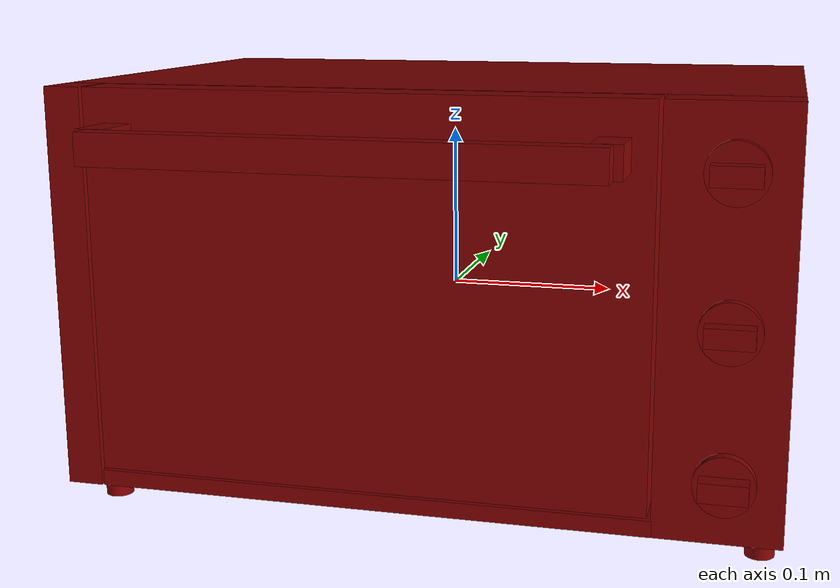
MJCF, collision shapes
<?xml version='1.0' encoding='UTF-8'?>
<mujoco model="model">
  <option timestep="0.002" gravity="0.0 0.0 -9.81"/>
  <compiler angle="radian"/>
  <asset>
    <mesh file="visuals/door.obj" name="door_vis"/>
    <mesh file="visuals/knob_function.obj" name="knob_function_vis"/>
    <mesh file="visuals/knob_temp.obj" name="knob_temp_vis"/>
    <mesh file="visuals/knob_time.obj" name="knob_time_vis"/>
    <mesh file="visuals/rack0.obj" name="rack0_vis"/>
    <mesh file="visuals/Body001.obj" name="Body001_vis"/>
    <mesh file="visuals/window.obj" name="window_vis"/>
    <texture file="visuals/T_BC001.png" name="Body001_material" type="2d"/>
    <material name="Body001_material" rgba="1 1 1 1.0" texture="Body001_material" shininess="0.1" specular="4"/>
    <texture file="visuals/T_BC001.png" name="door_material" type="2d"/>
    <material name="door_material" rgba="1 1 1 1.0" texture="door_material" shininess="0.1" specular="4"/>
    <material name="window_material" rgba="0.031017683446407318 0.031017683446407318 0.031017683446407318 0.800000011920929" shininess="0.4472135901451111" specular="0.3103448502657381"/>
    <texture file="visuals/T_BC001.png" name="knob_function_material" type="2d"/>
    <material name="knob_function_material" rgba="1 1 1 1.0" texture="knob_function_material" shininess="0.1" specular="4"/>
    <texture file="visuals/T_BC001.png" name="knob_temp_material" type="2d"/>
    <material name="knob_temp_material" rgba="1 1 1 1.0" texture="knob_temp_material" shininess="0.1" specular="4"/>
    <texture file="visuals/T_BC001.png" name="knob_time_material" type="2d"/>
    <material name="knob_time_material" rgba="1 1 1 1.0" texture="knob_time_material" shininess="0.1" specular="4"/>
    <texture file="visuals/T_BC001.png" name="rack0_material" type="2d"/>
    <material name="rack0_material" rgba="1 1 1 1.0" texture="rack0_material" shininess="0.1" specular="4"/>
  </asset>
  <default>
    <default class="visual">
      <geom conaffinity="0" contype="0" group="1" type="mesh"/>
    </default>
    <default class="collision">
      <geom group="0" rgba="0.5 0 0 0.5"/>
    </default>
    <default class="spawn">
      <geom group="0" rgba="1 1 1 0.5" contype="0" conaffinity="0"/>
      <site group="0" rgba="1 1 1 0.5"/>
    </default>
    <default class="region">
      <geom group="1" conaffinity="0" contype="0" rgba="0 1 0 0"/>
    </default>
  </default>
  <worldbody>
    <body>
      <body name="object">
        <geom mesh="Body001_vis" type="mesh" solimp="0.998 0.998 0.001" solref="0.001 1" friction="0.95 0.3 0.1" class="visual" material="Body001_material"/>
        <geom class="collision" type="box" pos="-1.1117663234472275e-08 0.038213882595300674 0.11146704107522964" size="0.21495407819747925 0.13431453704833984 0.020544366911053658" quat="1.0 0.0 0.0 0.0"/>
        <geom class="collision" type="box" pos="-1.1117663234472275e-08 0.038213882595300674 -0.10014694184064865" size="0.2149542272090912 0.1343146115541458 0.011536444537341595" quat="1.0 0.0 0.0 0.0"/>
        <geom class="collision" type="box" pos="-0.19572514295578003 0.038213882595300674 0.0013687210157513618" size="0.01923057809472084 0.13431468605995178 0.09001287817955017" quat="1.0 0.0 0.0 0.0"/>
        <geom class="collision" type="box" pos="0.17079590260982513 0.038213882595300674 0.0013687210157513618" size="0.044159721583127975 0.13431477546691895 0.09001291543245316" quat="1.0 0.0 0.0 0.0"/>
        <geom class="collision" type="box" pos="-0.023536691442131996 0.1631796658039093 0.0009072599932551384" size="0.15547867119312286 0.009349587373435497 0.08971089869737625" quat="1.0 0.0 0.0 0.0"/>
        <geom class="collision" type="box" pos="0.17874960601329803 -0.11105093359947205 0.010515553876757622" size="0.036206070333719254 0.014795082621276379 0.12149550020694733" quat="1.0 0.0 0.0 0.0"/>
        <geom class="collision" type="box" pos="-0.20392177999019623 -0.11129484325647354 0.010515553876757622" size="0.011033985763788223 0.015039000660181046 0.1214955747127533" quat="1.0 0.0 0.0 0.0"/>
        <geom class="collision" type="box" pos="-0.024312153458595276 -0.11116747558116913 -0.1061135083436966" size="0.1673894077539444 0.014911646023392677 0.004866898991167545" quat="1.0 0.0 0.0 0.0"/>
        <geom class="collision" type="cylinder" pos="-0.20294469594955444 -0.08630774915218353 -0.12149842083454132" size="0.008559237234294415 0.010513102635741234" quat="1.0 0.0 0.0 0.0"/>
        <geom class="collision" type="cylinder" pos="-0.20294469594955444 0.15876813232898712 -0.12149842083454132" size="0.008559237234294415 0.010513102635741234" quat="1.0 0.0 0.0 0.0"/>
        <geom class="collision" type="cylinder" pos="0.20214441418647766 0.15876813232898712 -0.12149842083454132" size="0.008559237234294415 0.010513102635741234" quat="1.0 0.0 0.0 0.0"/>
        <geom class="collision" type="cylinder" pos="0.20214441418647766 -0.08630774915218353 -0.12149842083454132" size="0.008559237234294415 0.010513102635741234" quat="1.0 0.0 0.0 0.0"/>
        <body name="door">
          <joint axis="1.0 0.0 0.0" pos="-0.025415249168872833 -0.12591320276260376 -0.09845322370529175" limited="true" name="door_joint" range="0.0 1.3707963267948966" type="hinge" damping="1" frictionloss="1" armature=".01" stiffness="0.05"/>
          <geom mesh="door_vis" type="mesh" solimp="0.998 0.998 0.001" solref="0.001 1" friction="0.95 0.3 0.1" class="visual" material="door_material"/>
          <geom class="collision" type="box" pos="-0.025143245235085487 -0.11256273090839386 0.016207324340939522" size="0.1654980629682541 0.013771158643066883 0.11580420285463333" quat="1.0 0.0 0.0 0.0" name="door_main"/>
          <geom class="collision" type="box" pos="-0.024750102311372757 -0.16606825590133667 0.10223766416311264" size="0.14608556032180786 0.007121006026864052 0.00943788979202509" quat="1.0 0.0 0.0 0.0" name="door_handle_main"/>
          <geom class="collision" type="box" pos="-0.16922050714492798 -0.1422918438911438 0.10223766416311264" size="0.015759708359837532 0.008605112321674824 0.00943788979202509" quat="0.7034296989440918 0.0 -0.0 -0.7107648253440857"/>
          <geom class="collision" type="box" pos="0.11793724447488785 -0.1422918438911438 0.10223766416311264" size="0.015759708359837532 0.008605112321674824 0.00943788979202509" quat="0.7034296989440918 0.0 -0.0 -0.7107648253440857"/>
          <body name="window">
            <geom mesh="window_vis" type="mesh" solimp="0.998 0.998 0.001" solref="0.001 1" friction="0.95 0.3 0.1" class="visual" material="window_material"/>
            <geom class="collision" type="box" pos="-0.01777963526546955 -0.11497806012630463 0.007443055510520935" size="0.13938847184181213 0.008377771824598312 0.07047072798013687" quat="1.0 0.0 0.0 0.0"/>
          </body>
        </body>
        <body name="knob_function">
          <joint axis="0.0 1.0 0.0" pos="0.18226183950901031 -0.13415184617042542 0.010355639271438122" limited="true" name="knob_function_joint" range="0.0 4.71238898038469" type="hinge" damping="0.05" armature="1" frictionloss="0.75"/>
          <geom mesh="knob_function_vis" type="mesh" solimp="0.998 0.998 0.001" solref="0.001 1" friction="0.95 0.3 0.1" class="visual" material="knob_function_material"/>
          <geom class="collision" type="box" pos="0.18193583190441132 -0.13924579322338104 0.01040484756231308" size="0.013568592257797718 0.005806430708616972 0.005599751137197018" quat="1.0 0.0 0.0 0.0" name="knob_function_main" friction="100 0.5 0.01"/>
          <geom class="collision" type="cylinder" pos="0.1819467842578888 -0.13023793697357178 0.010390573181211948" size="0.017327547073364258 0.0034101312048733234" quat="0.7071067094802856 0.7071068286895752 0.0 0.0" friction="100 0.5 0.01"/>
        </body>
        <body name="knob_temp">
          <joint axis="0.0 1.0 0.0" pos="0.18226183950901031 -0.13415184617042542 0.09543364495038986" limited="true" name="knob_temp_joint" range="0.0 4.71238898038469" type="hinge" damping="0.05" armature="1" frictionloss="0.75"/>
          <geom mesh="knob_temp_vis" type="mesh" solimp="0.998 0.998 0.001" solref="0.001 1" friction="0.95 0.3 0.1" class="visual" material="knob_temp_material"/>
          <geom class="collision" type="cylinder" pos="0.1819467842578888 -0.13023793697357178 0.0952157974243164" size="0.017327547073364258 0.0034101312048733234" quat="0.7071067094802856 0.7071068286895752 0.0 0.0" friction="100 0.5 0.01"/>
          <geom class="collision" type="box" pos="0.18193583190441132 -0.13924579322338104 0.09510093927383423" size="0.013568579219281673 0.005806427448987961 0.0055997478775680065" quat="1.0 0.0 0.0 0.0" name="knob_temp_main" friction="100 0.5 0.01"/>
        </body>
        <body name="knob_time">
          <joint axis="0.0 1.0 0.0" pos="0.18226183950901031 -0.13415184617042542 -0.07490671426057816" limited="true" name="knob_time_joint" range="0.0 4.71238898038469" type="hinge" damping="0.05" armature="1" frictionloss="0.75"/>
          <geom mesh="knob_time_vis" type="mesh" solimp="0.998 0.998 0.001" solref="0.001 1" friction="0.95 0.3 0.1" class="visual" material="knob_time_material"/>
          <geom class="collision" type="box" pos="0.18193583190441132 -0.13924579322338104 -0.07463209331035614" size="0.013568605296313763 0.005806433968245983 0.005599754396826029" quat="1.0 0.0 0.0 0.0" name="knob_time_main" friction="100 0.5 0.01"/>
          <geom class="collision" type="cylinder" pos="0.1819467842578888 -0.13023793697357178 -0.07492222636938095" size="0.017327547073364258 0.0034101312048733234" quat="0.7071067094802856 0.7071068286895752 0.0 0.0" friction="100 0.5 0.01"/>
        </body>
        <body name="rack0">
          <geom class="region" name="reg_rack0" type="box" pos="-0.024717941880226135 0.023329462856054306 0.04932081513106823" size="0.14687858319282532 0.1063260900080204 0.037107661202549935"/>
          <joint axis="0.0 -1.0 0.0" pos="-0.023016229271888733 0.023355282843112946 0.006173008121550083" limited="true" name="rack0_joint" range="0.0 0.21" type="slide" damping="1" frictionloss="1" armature=".01" stiffness="0.05"/>
          <geom mesh="rack0_vis" type="mesh" solimp="0.998 0.998 0.001" solref="0.001 1" friction="0.95 0.3 0.1" class="visual" material="rack0_material"/>
          <geom class="collision" type="box" pos="-0.02588854916393757 0.023254161700606346 0.00617041764780879" size="0.15024080872535706 0.11124929785728455 0.0010537913767620921" quat="1.0 0.0 0.0 0.0"/>
        </body>
        <geom class="region" name="reg_main" type="box" pos="3.725290298461914e-09 0.023097693920135498 0.0" size="0.21595579183101654 0.15043158626556397 0.1330115178823471"/>
      </body>
    </body>
  </worldbody>
  <actuator>
    <motor name="door_joint_actuator" joint="door_joint" gear="50"/>
    <motor name="knob_function_joint_actuator" joint="knob_function_joint" gear="50"/>
    <motor name="knob_temp_joint_actuator" joint="knob_temp_joint" gear="50"/>
    <motor name="knob_time_joint_actuator" joint="knob_time_joint" gear="50"/>
    <motor name="rack0_joint_actuator" joint="rack0_joint" gear="50"/>
  </actuator>
</mujoco>
